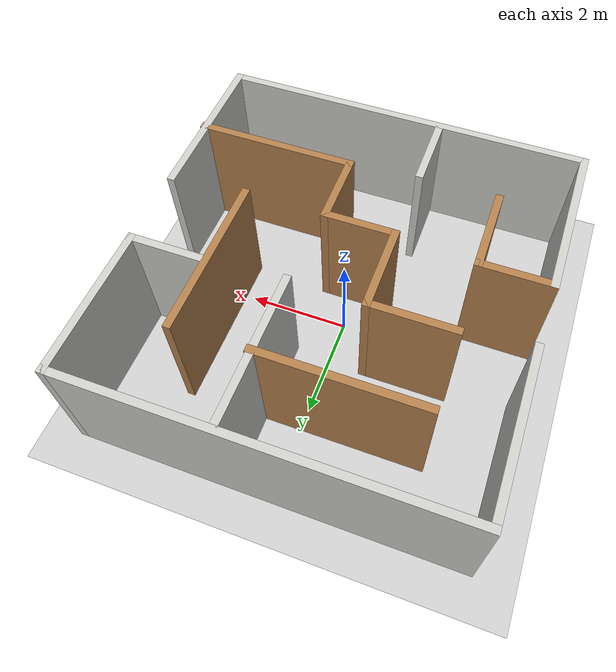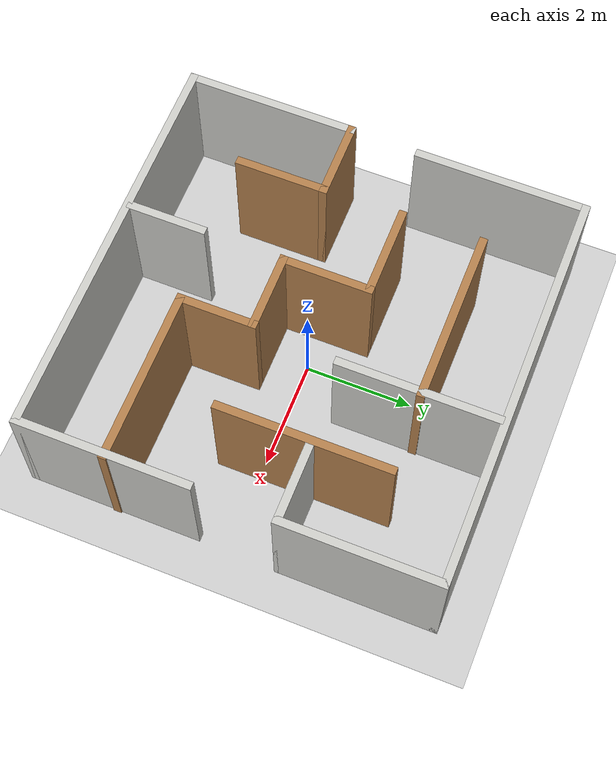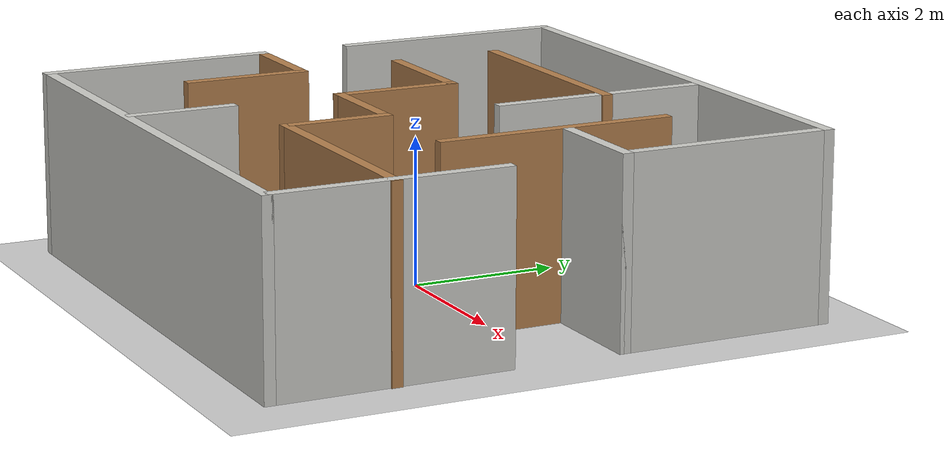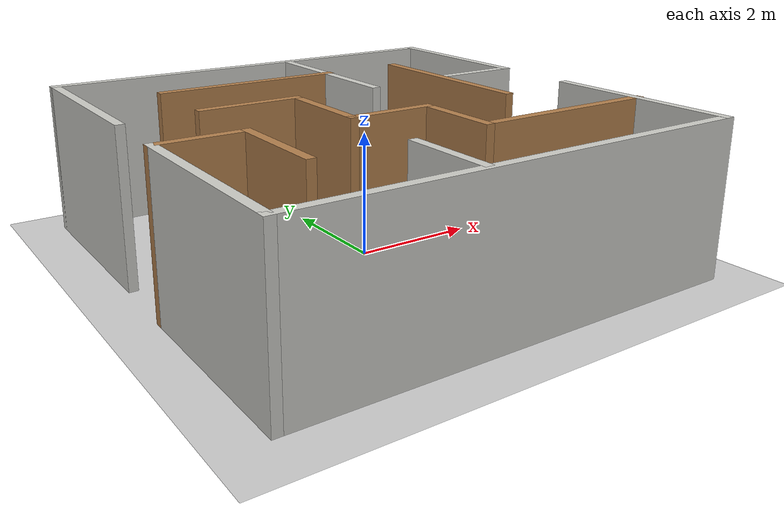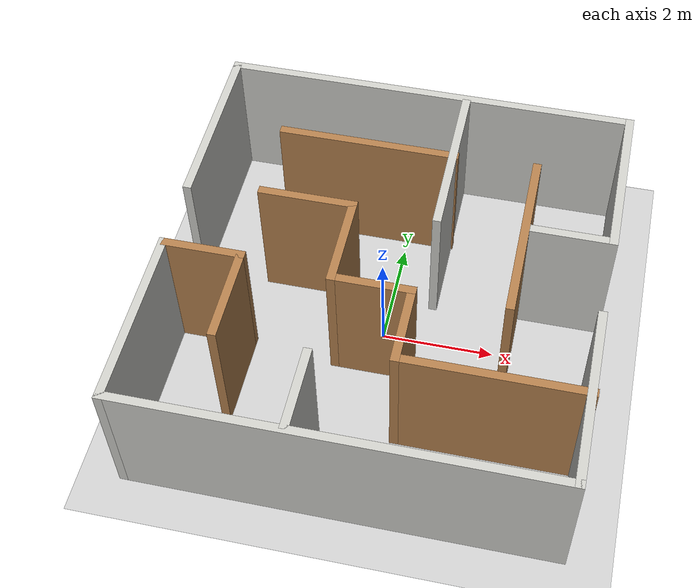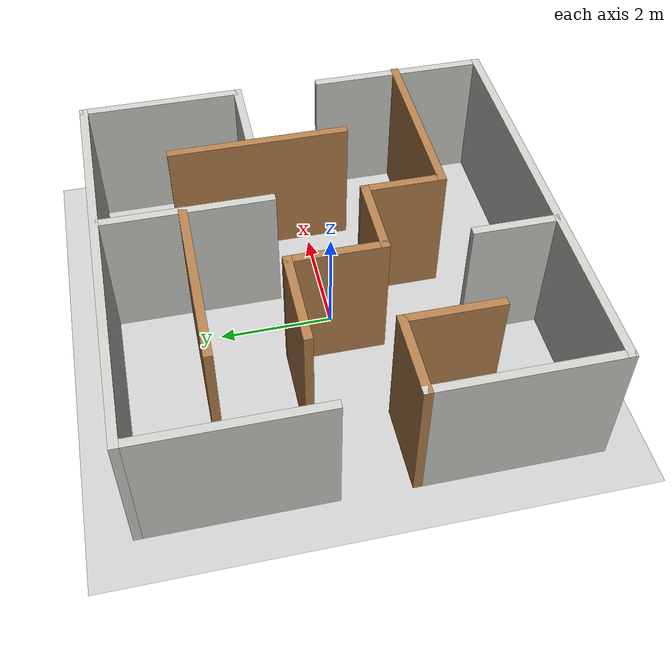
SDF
<sdf version="1.7">
 <world name="default">
  <light name="sun" type="directional">
   <pose>0 0 10 0 -0 0</pose>
   <diffuse>0.8 0.8 0.8 1</diffuse>
   <specular>0.2 0.2 0.2 1</specular>
   <attenuation>
    <range>1000</range>
    <constant>0.9</constant>
    <linear>0.01</linear>
    <quadratic>0.001</quadratic>
   </attenuation>
   <direction>-0.5 0.1 -0.9</direction>
   <spot><inner_angle>0</inner_angle><outer_angle>0</outer_angle><falloff>0</falloff></spot>
  </light>
  <model name="ground_plane">
   <static>1</static>
   <link name="link">
    <collision name="collision">
     <geometry><plane><normal>0 0 1</normal><size>100 100</size></plane></geometry>
     <surface><friction><ode><mu>100</mu><mu2>50</mu2></ode></friction></surface>
    </collision>
    <visual name="visual">
     <cast_shadows>0</cast_shadows>
     <geometry><plane><normal>0 0 1</normal><size>100 100</size></plane></geometry>
     <material>
      <script><uri>file://media/materials/scripts/gazebo.material</uri><name>Gazebo/Grey</name></script>
     </material>
    </visual>
   </link>
  </model>
  <gravity>0 0 -9.8</gravity>
  <magnetic_field>6e-06 2.3e-05 -4.2e-05</magnetic_field>
  <atmosphere type="adiabatic"/>
  <physics type="ode">
   <max_step_size>0.001</max_step_size>
   <real_time_factor>1</real_time_factor>
   <real_time_update_rate>1000</real_time_update_rate>
  </physics>
  <scene><ambient>0.4 0.4 0.4 1</ambient><background>0.7 0.7 0.7 1</background><shadows>1</shadows></scene>
  <audio><device>default</device></audio>
  <spherical_coordinates>
   <surface_model>EARTH_WGS84</surface_model>
   <latitude_deg>0</latitude_deg>
   <longitude_deg>0</longitude_deg>
   <elevation>0</elevation>
   <heading_deg>0</heading_deg>
  </spherical_coordinates>
  <model name="maze_1">
   <pose>0.05611 0.057595 0 0 0 -1.5708</pose>
   <link name="Wall_10">
    <collision name="Wall_10_Collision">
     <geometry><box><size>7.5 0.15 2.5</size></box></geometry>
     <pose>0 0 1.25 0 -0 0</pose>
    </collision>
    <visual name="Wall_10_Visual">
     <pose>0 0 1.25 0 -0 0</pose>
     <geometry><box><size>7.5 0.15 2.5</size></box></geometry>
     <material>
      <script><uri>file://media/materials/scripts/gazebo.material</uri><name>Gazebo/CeilingTiled</name></script>
      <ambient>0.647059 0.113725 0.176471 1</ambient>
     </material>
     <meta><layer>0</layer></meta>
    </visual>
    <pose>3.75782 -0.0133 0 0 -0 -1.5708</pose>
   </link>
   <link name="Wall_11">
    <collision name="Wall_11_Collision">
     <geometry><box><size>3.25 0.15 2.5</size></box></geometry>
     <pose>0 0 1.25 0 -0 0</pose>
    </collision>
    <visual name="Wall_11_Visual">
     <pose>0 0 1.25 0 -0 0</pose>
     <geometry><box><size>3.25 0.15 2.5</size></box></geometry>
     <material>
      <script><uri>file://media/materials/scripts/gazebo.material</uri><name>Gazebo/CeilingTiled</name></script>
      <ambient>0.647059 0.113725 0.176471 1</ambient>
     </material>
     <meta><layer>0</layer></meta>
    </visual>
    <pose>2.20782 -3.6883 0 0 -0 3.14159</pose>
   </link>
   <link name="Wall_12">
    <collision name="Wall_12_Collision">
     <geometry><box><size>1.5 0.15 2.5</size></box></geometry>
     <pose>0 0 1.25 0 -0 0</pose>
    </collision>
    <visual name="Wall_12_Visual">
     <pose>0 0 1.25 0 -0 0</pose>
     <geometry><box><size>1.5 0.15 2.5</size></box></geometry>
     <material>
      <script><uri>file://media/materials/scripts/gazebo.material</uri><name>Gazebo/Wood</name></script>
      <ambient>1 1 1 1</ambient>
     </material>
     <meta><layer>0</layer></meta>
    </visual>
    <pose>0.657816 -3.0133 0 0 -0 1.5708</pose>
   </link>
   <link name="Wall_13">
    <collision name="Wall_13_Collision">
     <geometry><box><size>1.75 0.15 2.5</size></box></geometry>
     <pose>0 0 1.25 0 -0 0</pose>
    </collision>
    <visual name="Wall_13_Visual">
     <pose>0 0 1.25 0 -0 0</pose>
     <geometry><box><size>1.75 0.15 2.5</size></box></geometry>
     <material>
      <script><uri>file://media/materials/scripts/gazebo.material</uri><name>Gazebo/Wood</name></script>
      <ambient>1 1 1 1</ambient>
     </material>
     <meta><layer>0</layer></meta>
    </visual>
    <pose>1.45782 -2.3383 0 0 -0 0</pose>
   </link>
   <link name="Wall_15">
    <collision name="Wall_15_Collision">
     <geometry><box><size>3.25 0.15 2.5</size></box></geometry>
     <pose>0 0 1.25 0 -0 0</pose>
    </collision>
    <visual name="Wall_15_Visual">
     <pose>0 0 1.25 0 -0 0</pose>
     <geometry><box><size>3.25 0.15 2.5</size></box></geometry>
     <material>
      <script><uri>file://media/materials/scripts/gazebo.material</uri><name>Gazebo/Wood</name></script>
      <ambient>1 1 1 1</ambient>
     </material>
     <meta><layer>0</layer></meta>
    </visual>
    <pose>2.14743 2.1383 0 0 -0 -1.5708</pose>
   </link>
   <link name="Wall_16">
    <collision name="Wall_16_Collision">
     <geometry><box><size>1.5 0.15 2.5</size></box></geometry>
     <pose>0 0 1.25 0 -0 0</pose>
    </collision>
    <visual name="Wall_16_Visual">
     <pose>0 0 1.25 0 -0 0</pose>
     <geometry><box><size>1.5 0.15 2.5</size></box></geometry>
     <material>
      <script><uri>file://media/materials/scripts/gazebo.material</uri><name>Gazebo/Wood</name></script>
      <ambient>1 1 1 1</ambient>
     </material>
     <meta><layer>0</layer></meta>
    </visual>
    <pose>1.47243 0.5883 0 0 -0 3.14159</pose>
   </link>
   <link name="Wall_17">
    <collision name="Wall_17_Collision">
     <geometry><box><size>1.5 0.15 2.5</size></box></geometry>
     <pose>0 0 1.25 0 -0 0</pose>
    </collision>
    <visual name="Wall_17_Visual">
     <pose>0 0 1.25 0 -0 0</pose>
     <geometry><box><size>1.5 0.15 2.5</size></box></geometry>
     <material>
      <script><uri>file://media/materials/scripts/gazebo.material</uri><name>Gazebo/Wood</name></script>
      <ambient>1 1 1 1</ambient>
     </material>
     <meta><layer>0</layer></meta>
    </visual>
    <pose>0.797428 -0.0867 0 0 -0 -1.5708</pose>
   </link>
   <link name="Wall_18">
    <collision name="Wall_18_Collision">
     <geometry><box><size>1.75 0.15 2.5</size></box></geometry>
     <pose>0 0 1.25 0 -0 0</pose>
    </collision>
    <visual name="Wall_18_Visual">
     <pose>0 0 1.25 0 -0 0</pose>
     <geometry><box><size>1.75 0.15 2.5</size></box></geometry>
     <material>
      <script><uri>file://media/materials/scripts/gazebo.material</uri><name>Gazebo/Wood</name></script>
      <ambient>1 1 1 1</ambient>
     </material>
     <meta><layer>0</layer></meta>
    </visual>
    <pose>-0.002572 -0.7617 0 0 -0 3.14159</pose>
   </link>
   <link name="Wall_19">
    <collision name="Wall_19_Collision">
     <geometry><box><size>1.75 0.15 2.5</size></box></geometry>
     <pose>0 0 1.25 0 -0 0</pose>
    </collision>
    <visual name="Wall_19_Visual">
     <pose>0 0 1.25 0 -0 0</pose>
     <geometry><box><size>1.75 0.15 2.5</size></box></geometry>
     <material>
      <script><uri>file://media/materials/scripts/gazebo.material</uri><name>Gazebo/Wood</name></script>
      <ambient>1 1 1 1</ambient>
     </material>
     <meta><layer>0</layer></meta>
    </visual>
    <pose>-0.802572 -1.5617 0 0 -0 -1.5708</pose>
   </link>
   <link name="Wall_21">
    <collision name="Wall_21_Collision">
     <geometry><box><size>1.5 0.15 2.5</size></box></geometry>
     <pose>0 0 1.25 0 -0 0</pose>
    </collision>
    <visual name="Wall_21_Visual">
     <pose>0 0 1.25 0 -0 0</pose>
     <geometry><box><size>1.5 0.15 2.5</size></box></geometry>
     <material>
      <script><uri>file://media/materials/scripts/gazebo.material</uri><name>Gazebo/CeilingTiled</name></script>
      <ambient>0.647059 0.113725 0.176471 1</ambient>
     </material>
     <meta><layer>0</layer></meta>
    </visual>
    <pose>3.00863 -0.780533 0 0 -0 0</pose>
   </link>
   <link name="Wall_23">
    <collision name="Wall_23_Collision">
     <geometry><box><size>3 0.15 2.5</size></box></geometry>
     <pose>0 0 1.25 0 -0 0</pose>
    </collision>
    <visual name="Wall_23_Visual">
     <pose>0 0 1.25 0 -0 0</pose>
     <geometry><box><size>3 0.15 2.5</size></box></geometry>
     <material>
      <script><uri>file://media/materials/scripts/gazebo.material</uri><name>Gazebo/CeilingTiled</name></script>
      <ambient>0.647059 0.113725 0.176471 1</ambient>
     </material>
     <meta><layer>0</layer></meta>
    </visual>
    <pose>-2.33282 3.6883 0 0 -0 0</pose>
   </link>
   <link name="Wall_24">
    <collision name="Wall_24_Collision">
     <geometry><box><size>1.5 0.15 2.5</size></box></geometry>
     <pose>0 0 1.25 0 -0 0</pose>
    </collision>
    <visual name="Wall_24_Visual">
     <pose>0 0 1.25 0 -0 0</pose>
     <geometry><box><size>1.5 0.15 2.5</size></box></geometry>
     <material>
      <script><uri>file://media/materials/scripts/gazebo.material</uri><name>Gazebo/CeilingTiled</name></script>
      <ambient>0.647059 0.113725 0.176471 1</ambient>
     </material>
     <meta><layer>0</layer></meta>
    </visual>
    <pose>-0.907817 3.0133 0 0 -0 -1.5708</pose>
   </link>
   <link name="Wall_26">
    <collision name="Wall_26_Collision">
     <geometry><box><size>3.25 0.15 2.5</size></box></geometry>
     <pose>0 0 1.25 0 -0 0</pose>
    </collision>
    <visual name="Wall_26_Visual">
     <pose>0 0 1.25 0 -0 0</pose>
     <geometry><box><size>3.25 0.15 2.5</size></box></geometry>
     <material>
      <script><uri>file://media/materials/scripts/gazebo.material</uri><name>Gazebo/Wood</name></script>
      <ambient>1 1 1 1</ambient>
     </material>
     <meta><layer>0</layer></meta>
    </visual>
    <pose>-0.771406 2.19869 0 0 -0 0</pose>
   </link>
   <link name="Wall_28">
    <collision name="Wall_28_Collision">
     <geometry><box><size>3 0.15 2.5</size></box></geometry>
     <pose>0 0 1.25 0 -0 0</pose>
    </collision>
    <visual name="Wall_28_Visual">
     <pose>0 0 1.25 0 -0 0</pose>
     <geometry><box><size>3 0.15 2.5</size></box></geometry>
     <material>
      <script><uri>file://media/materials/scripts/gazebo.material</uri><name>Gazebo/CeilingTiled</name></script>
      <ambient>0.647059 0.113725 0.176471 1</ambient>
     </material>
     <meta><layer>0</layer></meta>
    </visual>
    <pose>-2.22642 0.709078 0 0 -0 0</pose>
   </link>
   <link name="Wall_30">
    <collision name="Wall_30_Collision">
     <geometry><box><size>3.25 0.15 2.5</size></box></geometry>
     <pose>0 0 1.25 0 -0 0</pose>
    </collision>
    <visual name="Wall_30_Visual">
     <pose>0 0 1.25 0 -0 0</pose>
     <geometry><box><size>3.25 0.15 2.5</size></box></geometry>
     <material>
      <script><uri>file://media/materials/scripts/gazebo.material</uri><name>Gazebo/Wood</name></script>
      <ambient>1 1 1 1</ambient>
     </material>
     <meta><layer>0</layer></meta>
    </visual>
    <pose>-2.29481 -0.814322 0 0 -0 -1.5708</pose>
   </link>
   <link name="Wall_6">
    <collision name="Wall_6_Collision">
     <geometry><box><size>7.5 0.15 2.5</size></box></geometry>
     <pose>0 0 1.25 0 -0 0</pose>
    </collision>
    <visual name="Wall_6_Visual">
     <pose>0 0 1.25 0 -0 0</pose>
     <geometry><box><size>7.5 0.15 2.5</size></box></geometry>
     <material>
      <script><uri>file://media/materials/scripts/gazebo.material</uri><name>Gazebo/CeilingTiled</name></script>
      <ambient>0.647059 0.113725 0.176471 1</ambient>
     </material>
     <meta><layer>0</layer></meta>
    </visual>
    <pose>-3.75782 0.0133 0 0 -0 -1.5708</pose>
   </link>
   <link name="Wall_7">
    <collision name="Wall_7_Collision">
     <geometry><box><size>3.25 0.15 2.5</size></box></geometry>
     <pose>0 0 1.25 0 -0 0</pose>
    </collision>
    <visual name="Wall_7_Visual">
     <pose>0 0 1.25 0 -0 0</pose>
     <geometry><box><size>3.25 0.15 2.5</size></box></geometry>
     <material>
      <script><uri>file://media/materials/scripts/gazebo.material</uri><name>Gazebo/CeilingTiled</name></script>
      <ambient>0.647059 0.113725 0.176471 1</ambient>
     </material>
     <meta><layer>0</layer></meta>
    </visual>
    <pose>-2.20782 -3.6617 0 0 -0 0</pose>
   </link>
   <link name="Wall_9">
    <collision name="Wall_9_Collision">
     <geometry><box><size>3.25 0.15 2.5</size></box></geometry>
     <pose>0 0 1.25 0 -0 0</pose>
    </collision>
    <visual name="Wall_9_Visual">
     <pose>0 0 1.25 0 -0 0</pose>
     <geometry><box><size>3.25 0.15 2.5</size></box></geometry>
     <material>
      <script><uri>file://media/materials/scripts/gazebo.material</uri><name>Gazebo/CeilingTiled</name></script>
      <ambient>0.647059 0.113725 0.176471 1</ambient>
     </material>
     <meta><layer>0</layer></meta>
    </visual>
    <pose>2.20782 3.6617 0 0 -0 0</pose>
   </link>
   <static>1</static>
  </model>
 </world>
</sdf>
